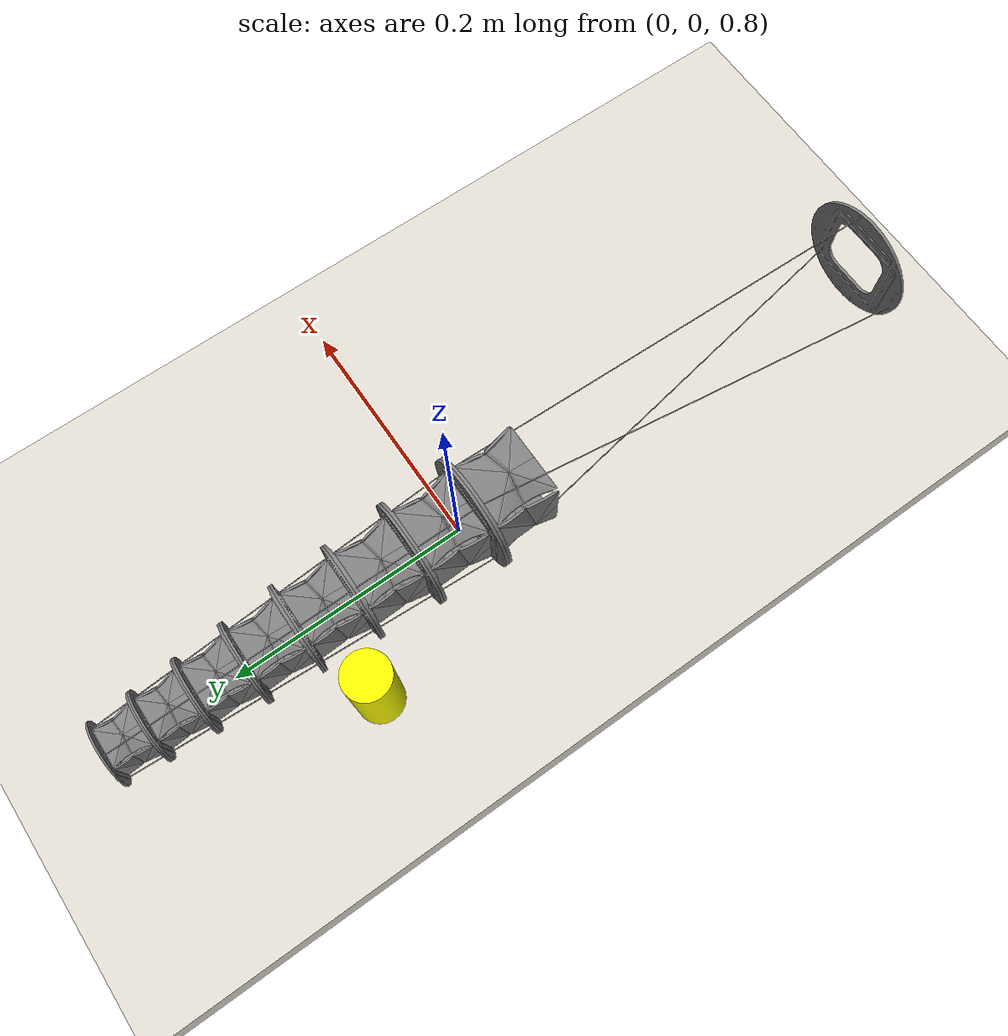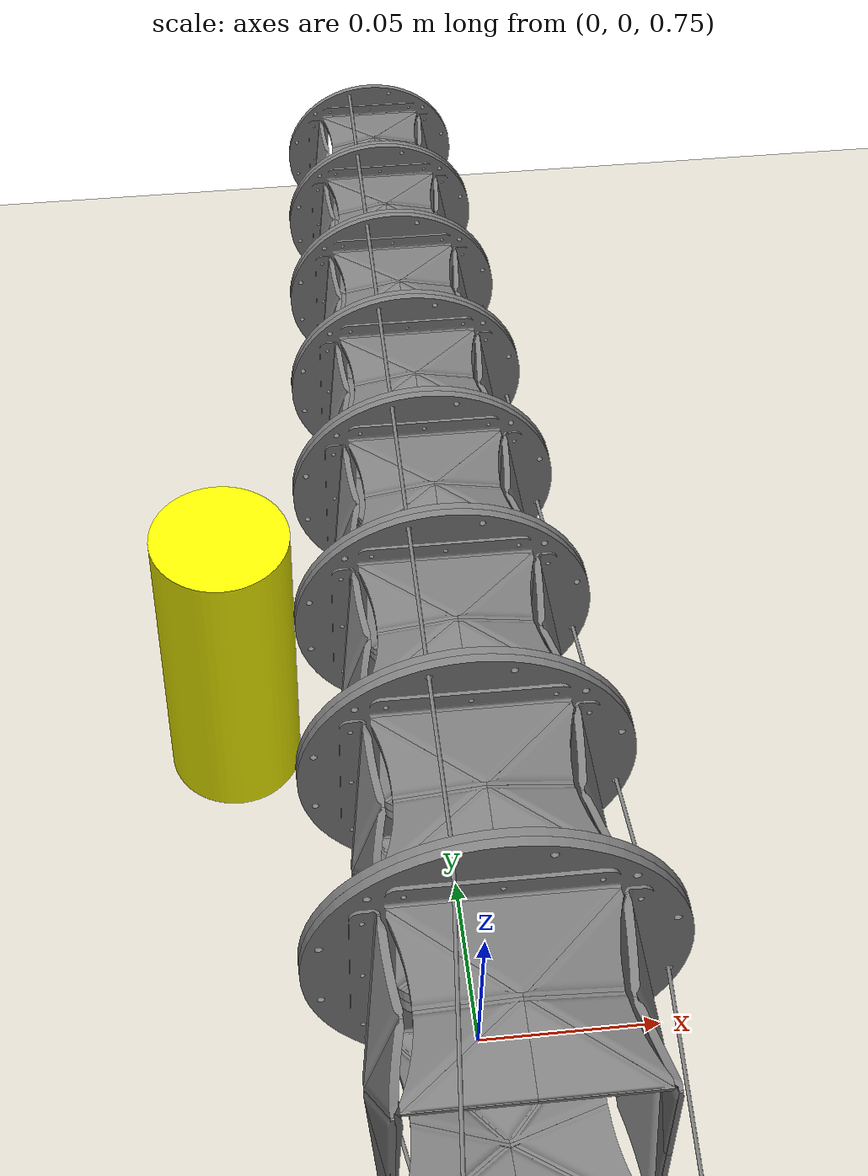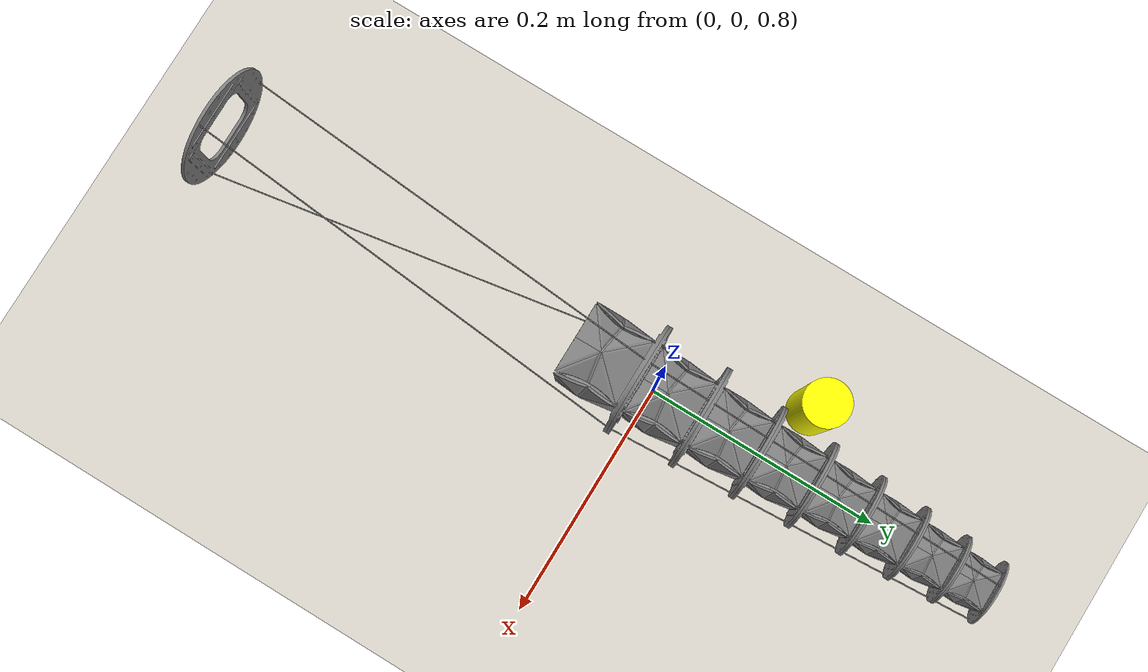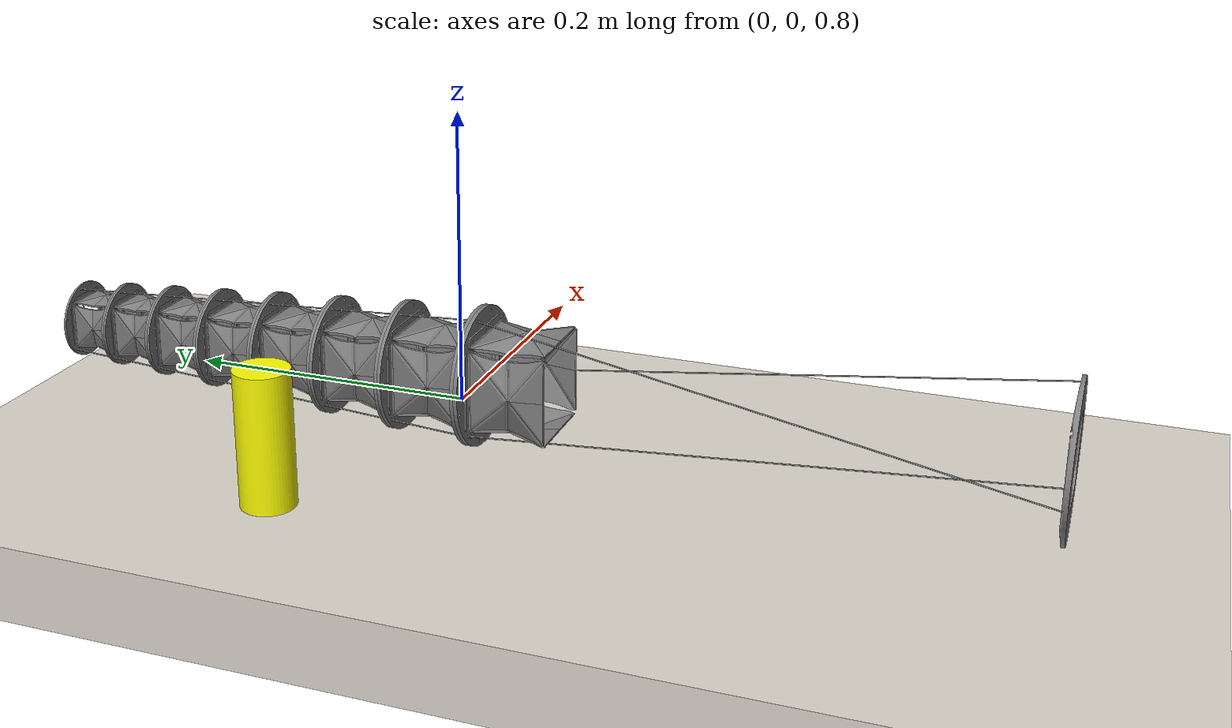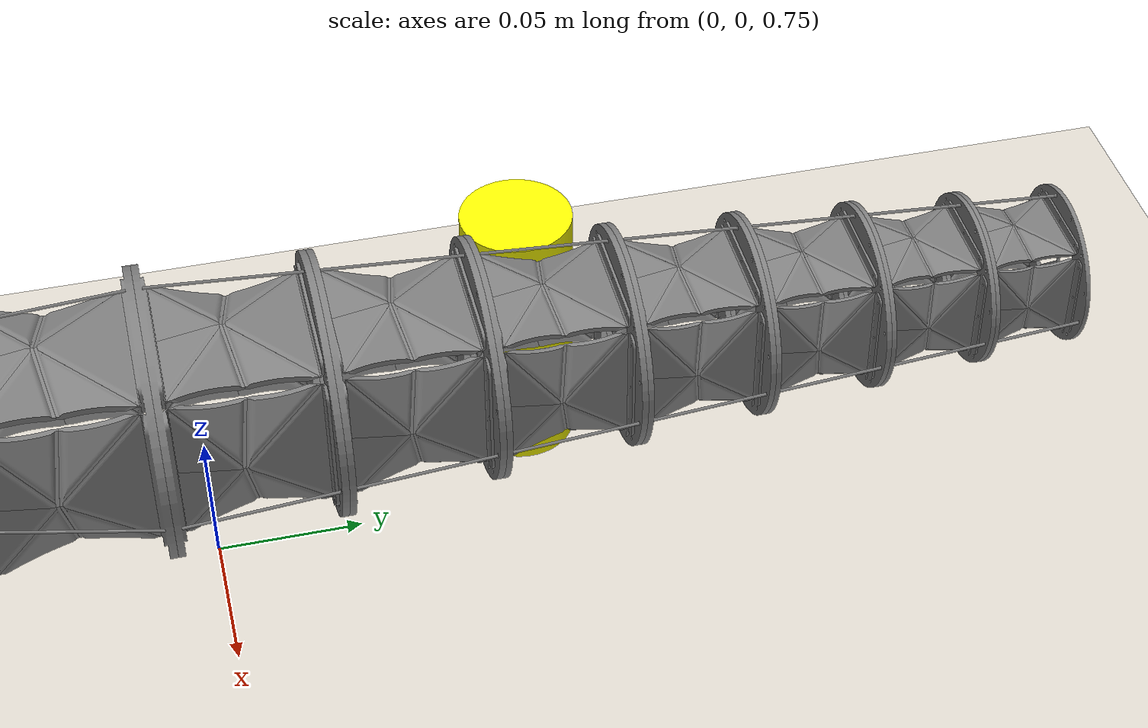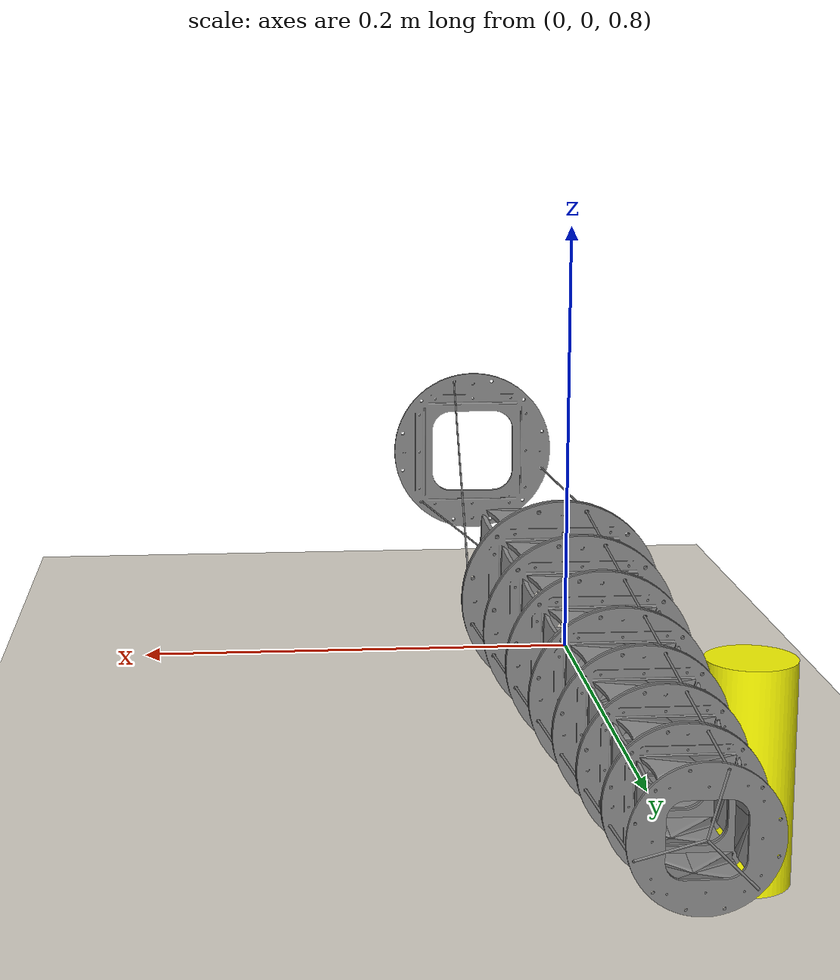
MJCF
<mujoco model="soft arm web scene">
  <include file="module1_8.xml"/>
  <include file="object_web.xml"/>
  <option timestep="0.004"/>
  <keyframe>
    <key name="settled" qpos="0.007176375081 -0.0006242869591 0.3254713804 -0.002224690998 -0.02569408996 1.571558491 0.001193357183 0.00336624149 -0.002597728918 0.003314327026 -0.003121770317 0.002247016031 -0.003127875938 0.0004755881001 0.00215853729 -0.002124959321 0.001994658963 -0.0006110738683 -9.356171946e-05 -0.0007206408568 -5.405307032e-05 -9.310789412e-05 0.0001747350718 -0.0001178188279 -0.0001062106966 0.0001112020921 -6.803535334e-05 0.0006536224975 0.001093643672 -0.0002878049456 0.001180655276 -0.002594673105 0.002439608107 -0.002451923185 2.534420202e-05 3.765725512e-05 -1.349602971e-05 -0.0001679877381 0.0001425300037 -4.745244725e-05 0.00485552097 0.01347734781 -0.01025739211 0.01342261967 -0.01325328313 0.009939732838 -0.01325388129 0.002221142733 0.009744408977 -0.009503924666 0.009180230474 -0.003354293006 0.0003353638279 -0.003867793858 -0.0002391081219 0.000109597644 2.676609131e-05 8.221956841e-05 -0.0002586503004 0.0001904068974 -0.000229837057 0.002376750885 0.003799660591 -0.0006977572397 0.004283103549 -0.01010504706 0.009752966641 -0.009565180691 3.733199348e-05 0.0001011741413 -5.78084335e-05 -0.001894649553 0.0007424598693 -4.951743767e-05 0.01058853583 0.02922769149 -0.0221854339 0.02917792267 -0.02910605773 0.02201728249 -0.02909081136 0.00505028243 0.02177554377 -0.02112332919 0.02060559291 -0.007951023489 0.001247231723 -0.009089143925 -0.0004341318895 0.0007433959182 -0.0004562092804 0.0007110833021 -0.0007814808662 0.0005153327957 -0.0007670317227 0.005130203461 0.008208612895 -0.001468504299 0.009314693906 -0.02194026819 0.02122314993 -0.02079071494 5.744889308e-05 0.0002141501957 -0.0001381640321 -0.0046599828 0.001688557556 -5.052648327e-05 -0.0007827475569 -0.5332329654 0.7263224127 -0.4411369541 0.003188008481 -0.002943099784 0.00303090046 -0.0008727877388 -0.002858939628 0.002402395723 -0.002979827726 0.532563753 -0.7251281114 0.4400683875 -0.0008485240442 -0.5327993098 0.7255619785 -0.440846033 0.003542751171 -0.003264507096 0.003396015715 -0.0008307990193 -0.002753915756 0.002285805504 -0.002852030536 0.5328423882 -0.7256571801 0.4405287422 2.8425655e-05 -1.294866265e-05 3.058596281e-05 0.001304205337 9.929478233e-06 -0.0001069884344 0.0004137699251 0.001157214582 -0.001342388176 0.0006688619238 0.5343942315 -0.7294368201 0.4416332261 -0.0001103649348 0.003727629888 -0.005487279712 0.002749742583 0.004911721049 -0.006505007721 0.003986887956 -0.001104696622 -0.001214804779 0.0005113494832 -0.001801195412 0.531404717 -0.7239276147 0.4396328418 -0.0007838295149 -0.5316581207 0.7248593433 -0.4410427168 0.001161444247 0.0001437564411 0.001010015815 4.824625772e-05 -8.735038792e-06 2.573376608e-05 0.001054614142 0.0003668322347 -0.0003166035368 0.0323411316 0.08853310306 -0.06733571421 0.08849836017 -0.08872407745 0.06762990059 -0.08865343019 0.01628317611 0.06790552608 -0.06523825273 0.06456495847 -0.02691369222 0.005862686773 -0.03041618034 -0.0007051321893 0.004756094242 -0.003488317185 0.00471246217 -0.004437706645 0.003036536388 -0.004469817934 0.01612314872 0.0265481016 -0.005593539105 0.0300219606 -0.06749251947 0.06491445773 -0.06414966249 0.0001593435068 0.0008009239129 -0.0005681842836 -0.01569291183 0.005440196898 -5.248664354e-05 0.0396288537 0.1082104098 -0.08239684318 0.1081795834 -0.1084975899 0.08283583889 -0.1084080523 0.02015557314 0.08341294822 -0.08000097607 0.07937388675 -0.03355182837 0.007592668065 -0.03785362169 -0.0007595447739 0.006322088296 -0.004678104624 0.00627424971 -0.005884272723 0.004054324864 -0.00593075745 0.01991673094 0.03297322685 -0.007149111718 0.0372500691 -0.08282183872 0.0795504026 -0.07877136693 0.0002059575088 0.001064536185 -0.0007660251652 -0.01950050806 0.006771433252 -5.280516591e-05 0.05148425007 -0.5507791892 0.8425155508 -0.4326931746 0.5502349936 -0.8416436438 0.4315968135 0.02287170442 -0.5768331098 0.8307702142 -0.4674111194 0.5054365308 -0.7340382886 0.4074009555 -0.004890958314 -0.5321429377 0.7245953362 -0.4430664344 0.5316238113 -0.7237448718 0.4420088564 0.02289322862 -0.5061172352 0.7351044895 -0.4085738586 0.5764218996 -0.8300759136 0.4664061556 -0.05999439284 0.1200087731 0.727687293 0.9999998875 -1.507508934e-05 -1.672012866e-05 -0.0004738326004"/>
  </keyframe>
</mujoco>

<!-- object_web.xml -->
<mujoco model="object_scene">
  <compiler angle="radian" coordinate="local" meshdir="." texturedir="."/>
  <asset>
    <mesh name="cylinder_base_vis" file="STL/cylinder_base.stl" scale="0.4 0.4 1"/>
    <mesh name="cylinder_base_col" file="STL/cylinder_base.stl" scale="0.4 0.4 1"/>
  </asset>
  <worldbody>
    <body name="tube" pos="-0.06 0.12 0.728">
      <joint name="tube_free" type="free" damping="0.02"/>
      <geom name="cylinder_base_vis" type="mesh" mesh="cylinder_base_vis" rgba="1 1 0 1" contype="0" conaffinity="0"/>
      <geom name="cylinder_base_col" type="mesh" mesh="cylinder_base_col" rgba="1 0 0 0" contype="1" conaffinity="1" friction="0.5 0.01 0.005"/>
      <inertial pos="0 0 0.05" mass="0.4" diaginertia="0.00156 0.00156 0.000335"/>
    </body>
    <body name="desk" pos="0 0 0.7">
      <geom name="desk_col" type="box" size="1.4 1.0 0.028" rgba="0.86 0.84 0.8 1" contype="1" conaffinity="1" friction="0.4 0.01 0.005"/>
    </body>
  </worldbody>
</mujoco>
